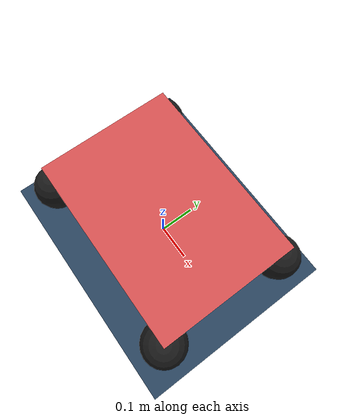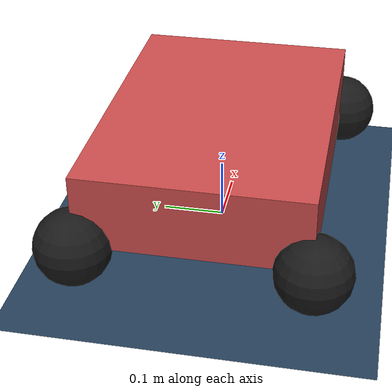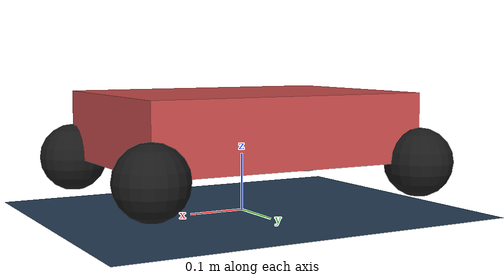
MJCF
<?xml version="1.0"?>
<mujoco model="wmr">

  <asset>
    <texture name="grid" type="2d" builtin="checker" rgb1=".1 .2 .3" rgb2=".2 .3 .4" width="300" height="300" />
    <material name="grid" texture="grid" texrepeat="8 8" reflectance=".2" />
  </asset>

  <worldbody>
    <geom name="ground" type="plane" size="1. 1. 0.01" material="grid" />
    <light pos="0 0 0.6" />
    <camera name="closeup" pos="0 -.1 .07" xyaxes="1 0 0 0 1 2" />

    <!-- Chassis -->
    <body name="chassis" pos="0 0 0.15">
      <freejoint />
      <geom name="chassis_geom" type="box" size="0.25 0.18 0.06" rgba="0.8 0.3 0.3 1" />

      <!-- Front left wheel -->
      <body name="wheel_fl" pos="0.25 0.18 -0.06">
        <joint name="joint_fl" type="hinge" axis="0 1 0" />
        <geom name="geom_fl" type="sphere" size="0.06" rgba="0.1 0.1 0.1 1" />
      </body>

      <!-- Front right wheel -->
      <body name="wheel_fr" pos="0.25 -0.18 -0.06">
        <joint name="joint_fr" type="hinge" axis="0 1 0" />
        <geom name="geom_fr" type="sphere" size="0.06" rgba="0.1 0.1 0.1 1" />
      </body>

      <!-- Rear left wheel -->
      <body name="wheel_rl" pos="-0.25 0.18 -0.06">
        <joint name="joint_rl" type="hinge" axis="0 1 0" />
        <geom name="geom_rl" type="sphere" size="0.06" rgba="0.1 0.1 0.1 1" />
      </body>

      <!-- Rear right wheel -->
      <body name="wheel_rr" pos="-0.25 -0.18 -0.06">
        <joint name="joint_rr" type="hinge" axis="0 1 0" />
        <geom name="geom_rr" type="sphere" size="0.06" rgba="0.1 0.1 0.1 1" />
      </body>

    </body>
  </worldbody>

  <actuator>
    <!-- Independent motors for each wheel -->
    <motor name="motor_fl" joint="joint_fl" gear="100" />
    <motor name="motor_fr" joint="joint_fr" gear="100" />
    <motor name="motor_rl" joint="joint_rl" gear="100" />
    <motor name="motor_rr" joint="joint_rr" gear="100" />
  </actuator>

  <sensor>
    <jointpos joint="joint_fl" />
    <jointvel joint="joint_fl" />
    <jointpos joint="joint_fr" />
    <jointvel joint="joint_fr" />
    <jointpos joint="joint_rl" />
    <jointvel joint="joint_rl" />
    <jointpos joint="joint_rr" />
    <jointvel joint="joint_rr" />

    <!-- simple IMU attached to chassis -->
  </sensor>

  <!-- A small site for mounting sensors on the chassis -->

</mujoco>
